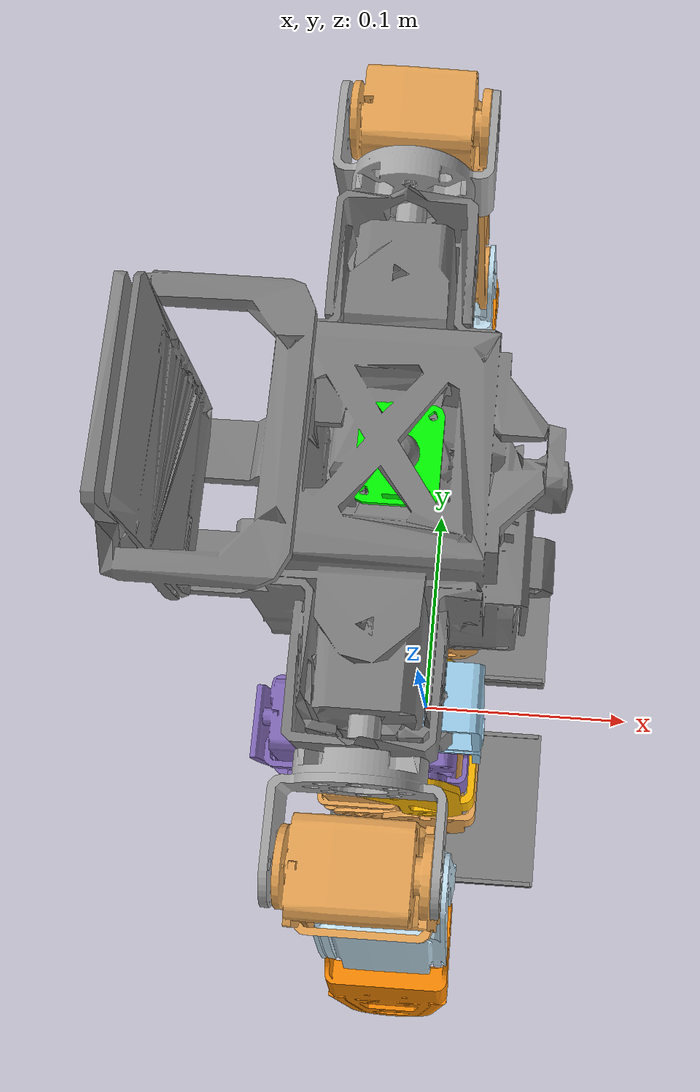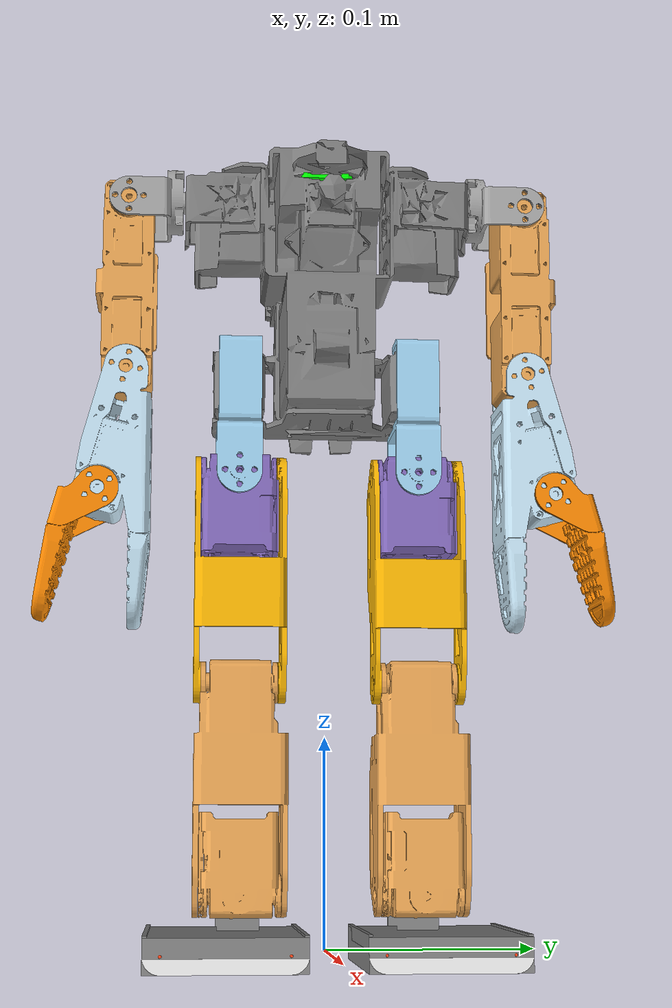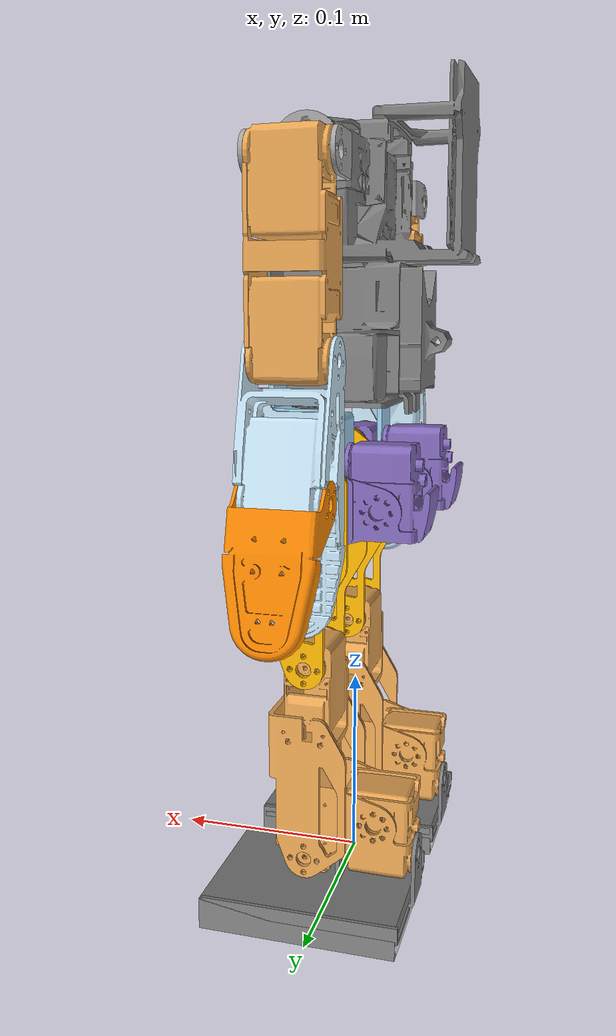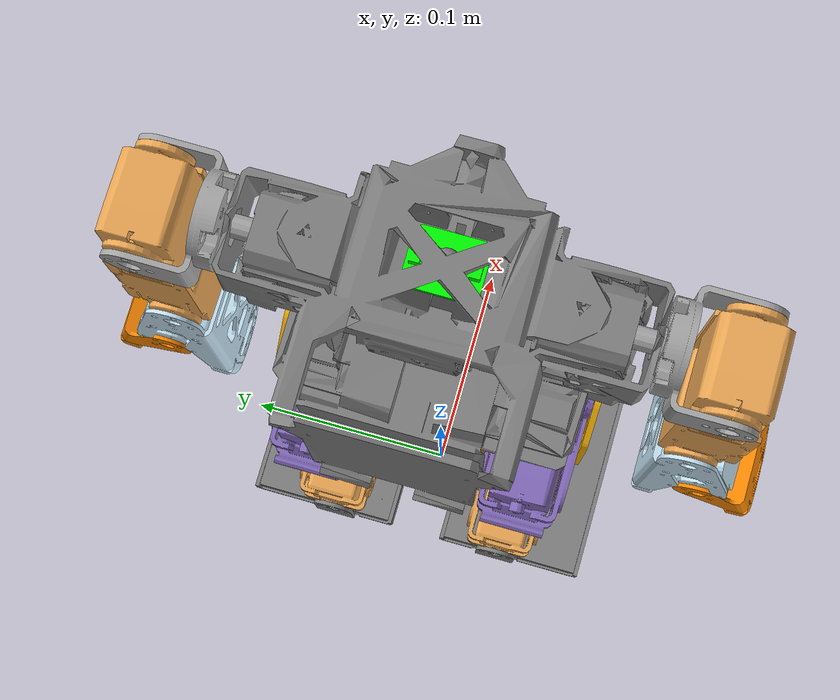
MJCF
<mujoco model="[urdf]_v3.2.1_w_battery">
  <default>
    <default class="robot">
      <default class="feetech_sts3215_12v">
        <joint armature="0.039999999991812" frictionloss="0.16197241014297026" damping="1.2305092028680242" actuatorfrcrange="-5.466091040935576 5.466091040935576" />
        <motor ctrlrange="-5.466091040935576 5.466091040935576" />
      </default>
      <default class="feetech_sts3250">
        <joint armature="0.03999977737144798" frictionloss="0.19999504581400715" damping="1.3464038511725651" actuatorfrcrange="-8.716130441407099 8.716130441407099" />
        <motor ctrlrange="-8.716130441407099 8.716130441407099" />
      </default>
      <default class="visual">
        <geom material="visualgeom" contype="0" conaffinity="0" group="2" />
      </default>
      <default class="collision">
        <geom material="collision_material" condim="3" contype="0" conaffinity="1" priority="1" group="1" solref="0.005 1" friction="0.55" />
        <equality solimp="0.99 0.999 1e-05" solref="0.005 1" />
      </default>
    </default>
    <mesh maxhullvert="64" />
  </default>

  <compiler angle="radian" />

  <asset>
    <material name="base_material" rgba="1 0 0 1" />
    <material name="Hip_Upper_Bracket_material" rgba="0.498039 0.498039 0.498039 1" />
    <material name="Upper_Servo_Hip_Bracket_material" rgba="0.615686 0.811765 0.929412 1" />
    <material name="imu_material" rgba="0 1 0 1" />
    <material name="1910_0025_0816_REV1_1_material" rgba="0.647059 0.647059 0.647059 1" />
    <material name="Right_Hip_Roll_STS3250_material" rgba="0.513725 0.415686 0.733333 1" />
    <material name="Left_Shoulder_Roll_STS3250_material" rgba="0.913725 0.647059 0.329412 1" />
    <material name="Upper_Leg_material" rgba="0.980392 0.713725 0.003922 1" />
    <material name="Gripper_Static_1_material" rgba="0.768627 0.886275 0.952941 1" />
    <material name="Gripper_Dynamic_1_material" rgba="0.972549 0.529412 0.003922 1" />
    <material name="Right_Foot_material" rgba="0.917647 0.917647 0.917647 1" />
    <material name="default_material" rgba="0.7 0.7 0.7 1" />
    <material name="collision_material" rgba="1.0 0.28 0.1 0.9" />
    <mesh name="Hip_Upper_Bracket.stl" file="meshes/Hip_Upper_Bracket.stl" />
    <mesh name="Upper_Servo_Hip_Bracket.stl" file="meshes/Upper_Servo_Hip_Bracket.stl" />
    <mesh name="Right_Hip_Roll_STS3250.stl" file="meshes/Right_Hip_Roll_STS3250.stl" />
    <mesh name="Upper_Leg.stl" file="meshes/Upper_Leg.stl" />
    <mesh name="Right_Knee_Pitch_STS3250.stl" file="meshes/Right_Knee_Pitch_STS3250.stl" />
    <mesh name="Right_Ankle_Pitch_STS3250.stl" file="meshes/Right_Ankle_Pitch_STS3250.stl" />
    <mesh name="Right_Foot_Bracket.stl" file="meshes/Right_Foot_Bracket.stl" />
    <mesh name="Right_Foot.collision.stl" file="meshes/Right_Foot.collision.stl" />
    <mesh name="Right_Foot.stl" file="meshes/Right_Foot.stl" />
    <mesh name="Upper_Servo_Hip_Bracket_1.stl" file="meshes/Upper_Servo_Hip_Bracket_1.stl" />
    <mesh name="Left_Hip_Roll_STS3250.stl" file="meshes/Left_Hip_Roll_STS3250.stl" />
    <mesh name="Upper_Leg_1.stl" file="meshes/Upper_Leg_1.stl" />
    <mesh name="Left_Knee_Pitch_STS3250.stl" file="meshes/Left_Knee_Pitch_STS3250.stl" />
    <mesh name="Left_Ankle_Pitch_STS3250.stl" file="meshes/Left_Ankle_Pitch_STS3250.stl" />
    <mesh name="Left_Foot_Bracket.stl" file="meshes/Left_Foot_Bracket.stl" />
    <mesh name="Left_Foot.collision.stl" file="meshes/Left_Foot.collision.stl" />
    <mesh name="Left_Foot.stl" file="meshes/Left_Foot.stl" />
    <mesh name="imu.stl" file="meshes/imu.stl" />
    <mesh name="1910_0025_0816_REV1_1.stl" file="meshes/1910_0025_0816_REV1_1.stl" />
    <mesh name="Left_Shoulder_Roll_STS3250.stl" file="meshes/Left_Shoulder_Roll_STS3250.stl" />
    <mesh name="Gripper_Static_1.stl" file="meshes/Gripper_Static_1.stl" />
    <mesh name="Gripper_Dynamic_1.stl" file="meshes/Gripper_Dynamic_1.stl" />
    <mesh name="1910_0025_0816_REV1.stl" file="meshes/1910_0025_0816_REV1.stl" />
    <mesh name="Right_Shoulder_Roll_STS3250.stl" file="meshes/Right_Shoulder_Roll_STS3250.stl" />
    <mesh name="Gripper_Static.stl" file="meshes/Gripper_Static.stl" />
    <mesh name="Gripper_Dynamic.stl" file="meshes/Gripper_Dynamic.stl" />
  </asset>

  <worldbody>
    <body name="base" pos="0.00000000 0.00000000 0.26905699" quat="1 0 0 0" childclass="robot">
      <freejoint name="floating_base" />
      <geom name="base_visual" pos="0 0 0" quat="0.7071054825112363 0.0 0.0 0.7071080798594735" material="base_material" type="sphere" size="0.01" class="visual" />
      <body name="Hip_Upper_Bracket" pos="0 0 0" quat="0.7071054825112363 0.0 0.0 0.7071080798594735">
        <inertial pos="0.000064 0.001815 0.046968" quat="1.0 0.0 0.0 0.0" mass="0.947439" diaginertia="0.002272 0.002828 0.001521" />
        <geom name="Hip_Upper_Bracket_visual" pos="0 0 0" quat="1.0 0.0 0.0 0.0" material="Hip_Upper_Bracket_material" type="mesh" mesh="Hip_Upper_Bracket.stl" class="visual" />
        <body name="Upper_Servo_Hip_Bracket" pos="-0.043014 -0.012315 -0.016762" quat="1.0 0.0 0.0 0.0">
          <joint name="right_hip_yaw" type="hinge" ref="0.0" class="feetech_sts3250" range="-1.570796 1.570796" axis="0 0 1" />
          <inertial pos="-0.000048 -0.005548 0.001454" quat="1.0 0.0 0.0 0.0" mass="0.024375" diaginertia="1.6e-05 1.3e-05 6e-06" />
          <geom name="Upper_Servo_Hip_Bracket_visual" pos="0 0 0" quat="1.0 0.0 0.0 0.0" material="Upper_Servo_Hip_Bracket_material" type="mesh" mesh="Upper_Servo_Hip_Bracket.stl" class="visual" />
          <body name="Right_Hip_Roll_STS3250" pos="-0.000087 0.018650 -0.026665" quat="0.7071068967259818 0.7071066656470943 0.0 0.0">
            <joint name="right_hip_roll" type="hinge" ref="0.0" class="feetech_sts3250" range="-0.610865 0.610865" axis="0 0 1" />
            <inertial pos="-0.000391 -0.013509 -0.000227" quat="1.0 0.0 0.0 0.0" mass="0.187737" diaginertia="0.000116 0.000101 6.5e-05" />
            <geom name="Right_Hip_Roll_STS3250_visual" pos="0 0 0" quat="1.0 0.0 0.0 0.0" material="Right_Hip_Roll_STS3250_material" type="mesh" mesh="Right_Hip_Roll_STS3250.stl" class="visual" />
            <body name="Upper_Leg" pos="-0.018200 0 0.016450" quat="0.7071068967259818 0.0 0.7071066656470943 0.0">
              <joint name="right_hip_pitch" type="hinge" ref="0.0" class="feetech_sts3250" range="-2.234021 0.872665" axis="0 0 1" />
              <inertial pos="-0.003366 -0.049105 0.019668" quat="1.0 0.0 0.0 0.0" mass="0.048593" diaginertia="6.1e-05 2.8e-05 4.9e-05" />
              <geom name="Upper_Leg_visual" pos="0 0 0" quat="1.0 0.0 0.0 0.0" material="Upper_Leg_material" type="mesh" mesh="Upper_Leg.stl" class="visual" />
              <body name="Right_Knee_Pitch_STS3250" pos="0 -0.100000 0.001000" quat="-1.7320510330969933e-07 -0.999999999999985 -0.0 0.0">
                <joint name="right_knee_pitch" type="hinge" ref="0.0" class="feetech_sts3250" range="-2.268928 1.745329" axis="0 0 1" />
                <inertial pos="-0.001016 0.028277 -0.017664" quat="1.0 0.0 0.0 0.0" mass="0.132026" diaginertia="0.000126 4.1e-05 0.00011" />
                <geom name="Right_Knee_Pitch_STS3250_visual" pos="0 0 0" quat="1.0 0.0 0.0 0.0" material="Left_Shoulder_Roll_STS3250_material" type="mesh" mesh="Right_Knee_Pitch_STS3250.stl" class="visual" />
                <body name="Right_Ankle_Pitch_STS3250" pos="0 0.100000 -0.038724" quat="-1.7320510330969933e-07 -0.999999999999985 -0.0 0.0">
                  <joint name="right_ankle_pitch" type="hinge" ref="0.0" class="feetech_sts3250" range="-1.570796 0.610865" axis="0 0 1" />
                  <inertial pos="0.016567 0.013062 -0.018658" quat="1.0 0.0 0.0 0.0" mass="0.186777" diaginertia="6.6e-05 0.000101 0.000115" />
                  <geom name="Right_Ankle_Pitch_STS3250_visual" pos="0 0 0" quat="1.0 0.0 0.0 0.0" material="Left_Shoulder_Roll_STS3250_material" type="mesh" mesh="Right_Ankle_Pitch_STS3250.stl" class="visual" />
                  <body name="Right_Foot_Bracket" pos="0.053050 0 -0.019600" quat="-1.2247452309842457e-07 -0.7071068967259713 1.22474483074382e-07 -0.7071066656470838">
                    <joint name="right_ankle_roll" type="hinge" ref="0.0" class="feetech_sts3250" range="-0.523599 0.523599" axis="0 0 1" />
                    <inertial pos="-0.006961 0.021778 -0.045037" quat="1.0 0.0 0.0 0.0" mass="0.047410" diaginertia="4.7e-05 7.3e-05 3e-05" />
                    <geom name="Right_Foot_Bracket_visual" pos="0 0 0" quat="1.0 0.0 0.0 0.0" material="Hip_Upper_Bracket_material" type="mesh" mesh="Right_Foot_Bracket.stl" class="visual" />
                    <body name="Right_Foot" pos="0.018000 0.025630 -0.010575" quat="0.5000001633974483 0.4999999999999733 0.4999999999999733 -0.49999983660255165">
                      <inertial pos="0.040732 -0.025000 -0.003390" quat="1.0 0.0 0.0 0.0" mass="0.065576" diaginertia="2.7e-05 5.5e-05 8.1e-05" />
                      <geom name="Right_Foot_visual" pos="0 0 0" quat="1.0 0.0 0.0 0.0" material="Right_Foot_material" type="mesh" mesh="Right_Foot.stl" class="visual" />
                      <geom name="Right_Foot_collision_capsule_0" type="capsule" quat="1.000000 0.000000 0.000000 0.000000" fromto="-0.001425 -0.053937 0.001000 0.082870 -0.053937 0.001000" size="0.008000 0.050148" material="collision_material" class="collision" />
                      <geom name="Right_Foot_visual_capsule_0" type="capsule" quat="1.000000 0.000000 0.000000 0.000000" fromto="-0.001425 -0.053937 0.001000 0.082870 -0.053937 0.001000" size="0.008000 0.050148" material="Right_Foot_material" class="visual" />
                      <geom name="Right_Foot_collision_capsule_1" type="capsule" quat="1.000000 0.000000 0.000000 0.000000" fromto="-0.001425 0.003937 0.001000 0.082870 0.003937 0.001000" size="0.008000 0.050148" material="collision_material" class="collision" />
                      <geom name="Right_Foot_visual_capsule_1" type="capsule" quat="1.000000 0.000000 0.000000 0.000000" fromto="-0.001425 0.003937 0.001000 0.082870 0.003937 0.001000" size="0.008000 0.050148" material="Right_Foot_material" class="visual" />
                      <site name="right_foot" size="0.05 0.037 0.008" pos="0.040732 -0.025 0.001" type="box" />
                    </body>
                  </body>
                </body>
              </body>
            </body>
          </body>
        </body>
        <body name="Upper_Servo_Hip_Bracket_1" pos="0.043070 -0.012315 -0.016762" quat="1.0 0.0 0.0 0.0">
          <joint name="left_hip_yaw" type="hinge" ref="0.0" class="feetech_sts3250" range="-1.570796 1.570796" axis="0 0 1" />
          <inertial pos="-0.000048 -0.005548 0.001454" quat="1.0 0.0 0.0 0.0" mass="0.024375" diaginertia="1.6e-05 1.3e-05 6e-06" />
          <geom name="Upper_Servo_Hip_Bracket_1_visual" pos="0 0 0" quat="1.0 0.0 0.0 0.0" material="Upper_Servo_Hip_Bracket_material" type="mesh" mesh="Upper_Servo_Hip_Bracket_1.stl" class="visual" />
          <body name="Left_Hip_Roll_STS3250" pos="-0.000087 0.018650 -0.026665" quat="0.7071068967259818 0.7071066656470943 0.0 0.0">
            <joint name="left_hip_roll" type="hinge" ref="0.0" class="feetech_sts3250" range="-0.610865 0.610865" axis="0 0 1" />
            <inertial pos="-0.000376 -0.013509 -0.000227" quat="1.0 0.0 0.0 0.0" mass="0.187737" diaginertia="0.000116 0.000101 6.5e-05" />
            <geom name="Left_Hip_Roll_STS3250_visual" pos="0 0 0" quat="1.0 0.0 0.0 0.0" material="Right_Hip_Roll_STS3250_material" type="mesh" mesh="Left_Hip_Roll_STS3250.stl" class="visual" />
            <body name="Upper_Leg_1" pos="-0.018200 0 0.016450" quat="0.7071068967259818 0.0 0.7071066656470943 0.0">
              <joint name="left_hip_pitch" type="hinge" ref="0.0" class="feetech_sts3250" range="-2.234021 0.872665" axis="0 0 1" />
              <inertial pos="-0.003366 -0.049105 0.019668" quat="1.0 0.0 0.0 0.0" mass="0.048593" diaginertia="6.1e-05 2.8e-05 4.9e-05" />
              <geom name="Upper_Leg_1_visual" pos="0 0 0" quat="1.0 0.0 0.0 0.0" material="Upper_Leg_material" type="mesh" mesh="Upper_Leg_1.stl" class="visual" />
              <body name="Left_Knee_Pitch_STS3250" pos="0 -0.100000 0.001000" quat="-1.7320510330969933e-07 -0.999999999999985 -0.0 0.0">
                <joint name="left_knee_pitch" type="hinge" ref="0.0" class="feetech_sts3250" range="-2.268928 1.745329" axis="0 0 1" />
                <inertial pos="-0.001016 0.028277 -0.017664" quat="1.0 0.0 0.0 0.0" mass="0.132026" diaginertia="0.000126 4.1e-05 0.00011" />
                <geom name="Left_Knee_Pitch_STS3250_visual" pos="0 0 0" quat="1.0 0.0 0.0 0.0" material="Left_Shoulder_Roll_STS3250_material" type="mesh" mesh="Left_Knee_Pitch_STS3250.stl" class="visual" />
                <body name="Left_Ankle_Pitch_STS3250" pos="0 0.100000 -0.038724" quat="-1.7320510330969933e-07 -0.999999999999985 -0.0 0.0">
                  <joint name="left_ankle_pitch" type="hinge" ref="0.0" class="feetech_sts3250" range="-1.570796 0.610865" axis="0 0 1" />
                  <inertial pos="0.016567 0.013062 -0.018493" quat="1.0 0.0 0.0 0.0" mass="0.186777" diaginertia="6.5e-05 0.0001 0.000115" />
                  <geom name="Left_Ankle_Pitch_STS3250_visual" pos="0 0 0" quat="1.0 0.0 0.0 0.0" material="Left_Shoulder_Roll_STS3250_material" type="mesh" mesh="Left_Ankle_Pitch_STS3250.stl" class="visual" />
                  <body name="Left_Foot_Bracket" pos="0.053050 0 -0.019400" quat="-1.2247452309842457e-07 -0.7071068967259713 1.22474483074382e-07 -0.7071066656470838">
                    <joint name="left_ankle_roll" type="hinge" ref="0.0" class="feetech_sts3250" range="-0.523599 0.523599" axis="0 0 1" />
                    <inertial pos="0.006961 0.021778 -0.045037" quat="1.0 0.0 0.0 0.0" mass="0.047410" diaginertia="4.7e-05 7.3e-05 3e-05" />
                    <geom name="Left_Foot_Bracket_visual" pos="0 0 0" quat="1.0 0.0 0.0 0.0" material="Hip_Upper_Bracket_material" type="mesh" mesh="Left_Foot_Bracket.stl" class="visual" />
                    <body name="Left_Foot" pos="0.032000 0.025630 -0.010575" quat="0.5000001633974483 0.4999999999999733 0.4999999999999733 -0.49999983660255165">
                      <inertial pos="0.040732 -0.025000 -0.003390" quat="1.0 0.0 0.0 0.0" mass="0.065576" diaginertia="2.7e-05 5.5e-05 8.1e-05" />
                      <geom name="Left_Foot_visual" pos="0 0 0" quat="1.0 0.0 0.0 0.0" material="Right_Foot_material" type="mesh" mesh="Left_Foot.stl" class="visual" />
                      <geom name="Left_Foot_collision_capsule_0" type="capsule" quat="1.000000 0.000000 0.000000 0.000000" fromto="-0.001425 -0.053937 0.001000 0.082870 -0.053937 0.001000" size="0.008000 0.050148" material="collision_material" class="collision" />
                      <geom name="Left_Foot_visual_capsule_0" type="capsule" quat="1.000000 0.000000 0.000000 0.000000" fromto="-0.001425 -0.053937 0.001000 0.082870 -0.053937 0.001000" size="0.008000 0.050148" material="Right_Foot_material" class="visual" />
                      <geom name="Left_Foot_collision_capsule_1" type="capsule" quat="1.000000 0.000000 0.000000 0.000000" fromto="-0.001425 0.003937 0.001000 0.082870 0.003937 0.001000" size="0.008000 0.050148" material="collision_material" class="collision" />
                      <geom name="Left_Foot_visual_capsule_1" type="capsule" quat="1.000000 0.000000 0.000000 0.000000" fromto="-0.001425 0.003937 0.001000 0.082870 0.003937 0.001000" size="0.008000 0.050148" material="Right_Foot_material" class="visual" />
                      <site name="left_foot" size="0.05 0.037 0.008" pos="0.040732 -0.025 0.001" type="box" />
                    </body>
                  </body>
                </body>
              </body>
            </body>
          </body>
        </body>
        <body name="imu" pos="0.000028 -0.007747 0.110737" quat="-1.732050904062657e-07 -6.685716821730214e-11 -0.00038599999041458497 -0.9999999255019859">
          <inertial pos="0 0 -0.000465" quat="1.0 0.0 0.0 0.0" mass="0.002752" diaginertia="1e-06 1e-06 1e-06" />
          <geom name="imu_visual" pos="0 0 0" quat="1.0 0.0 0.0 0.0" material="imu_material" type="mesh" mesh="imu.stl" class="visual" />
          <site name="imu_site" quat="1.0 0.0 0.0 0.0" pos="0.0 0.0 0.0" />
        </body>
        <body name="1910_0025_0816_REV1_1" pos="0.065728 -0.004315 0.098638" quat="0.5000001633974483 -0.4999999999999733 -0.49999983660255165 0.4999999999999733">
          <joint name="left_shoulder_pitch" type="hinge" ref="0.0" class="feetech_sts3250" range="-1.570796 3.141593" axis="0 0 1" />
          <inertial pos="0.000032 0.001430 -0.013973" quat="1.0 0.0 0.0 0.0" mass="0.018130" diaginertia="3e-06 5e-06 4e-06" />
          <geom name="1910_0025_0816_REV1_1_visual" pos="0 0 0" quat="1.0 0.0 0.0 0.0" material="1910_0025_0816_REV1_1_material" type="mesh" mesh="1910_0025_0816_REV1_1.stl" class="visual" />
          <body name="Left_Shoulder_Roll_STS3250" pos="-0.018758 0.004100 -0.032700" quat="-1.2247452309842457e-07 0.7071068967259713 -1.22474483074382e-07 -0.7071066656470838">
            <joint name="left_shoulder_roll" type="hinge" ref="0.0" class="feetech_sts3250" range="-0.349066 3.316126" axis="0 0 1" />
            <inertial pos="0.000214 -0.038685 -0.017251" quat="1.0 0.0 0.0 0.0" mass="0.151717" diaginertia="0.000188 3.4e-05 0.000175" />
            <geom name="Left_Shoulder_Roll_STS3250_visual" pos="0 0 0" quat="1.0 0.0 0.0 0.0" material="Left_Shoulder_Roll_STS3250_material" type="mesh" mesh="Left_Shoulder_Roll_STS3250.stl" class="visual" />
            <body name="Gripper_Static_1" pos="0 -0.086212 0" quat="-1.7320510330969933e-07 -0.999999999999985 -0.0 0.0">
              <joint name="left_elbow_roll" type="hinge" ref="0.0" class="feetech_sts3215_12v" range="-1.396263 1.570796" axis="0 0 1" />
              <inertial pos="0.003807 0.052618 0.017678" quat="1.0 0.0 0.0 0.0" mass="0.106517" diaginertia="9.2e-05 3e-05 8.6e-05" />
              <geom name="Gripper_Static_1_visual" pos="0 0 0" quat="1.0 0.0 0.0 0.0" material="Gripper_Static_1_material" type="mesh" mesh="Gripper_Static_1.stl" class="visual" />
              <body name="Gripper_Dynamic_1" pos="0.012500 0.060000 -0.000260" quat="1.0 0.0 0.0 0.0">
                <joint name="left_gripper_roll" type="hinge" ref="0.0" class="feetech_sts3215_12v" range="-0.488692 0.663225" axis="0 0 1" />
                <inertial pos="0.018952 0.024682 0.018814" quat="1.0 0.0 0.0 0.0" mass="0.025433" diaginertia="1.1e-05 5e-06 9e-06" />
                <geom name="Gripper_Dynamic_1_visual" pos="0 0 0" quat="1.0 0.0 0.0 0.0" material="Gripper_Dynamic_1_material" type="mesh" mesh="Gripper_Dynamic_1.stl" class="visual" />
              </body>
            </body>
          </body>
        </body>
        <body name="1910_0025_0816_REV1" pos="-0.065672 -0.004315 0.098638" quat="0.5000001633974483 0.4999999999999733 0.49999983660255165 0.4999999999999733">
          <joint name="right_shoulder_pitch" type="hinge" ref="0.0" class="feetech_sts3250" range="-3.141593 1.570796" axis="0 0 1" />
          <inertial pos="-0.000032 -0.001430 -0.013973" quat="1.0 0.0 0.0 0.0" mass="0.018130" diaginertia="3e-06 5e-06 4e-06" />
          <geom name="1910_0025_0816_REV1_visual" pos="0 0 0" quat="1.0 0.0 0.0 0.0" material="1910_0025_0816_REV1_1_material" type="mesh" mesh="1910_0025_0816_REV1.stl" class="visual" />
          <body name="Right_Shoulder_Roll_STS3250" pos="-0.018892 -0.004100 -0.032700" quat="-1.2247452309842457e-07 0.7071068967259713 1.22474483074382e-07 0.7071066656470838">
            <joint name="right_shoulder_roll" type="hinge" ref="0.0" class="feetech_sts3250" range="-3.316126 0.349066" axis="0 0 -1" />
            <inertial pos="-0.000210 0.038685 0.017251" quat="1.0 0.0 0.0 0.0" mass="0.151717" diaginertia="0.000188 3.4e-05 0.000175" />
            <geom name="Right_Shoulder_Roll_STS3250_visual" pos="0 0 0" quat="1.0 0.0 0.0 0.0" material="Left_Shoulder_Roll_STS3250_material" type="mesh" mesh="Right_Shoulder_Roll_STS3250.stl" class="visual" />
            <body name="Gripper_Static" pos="0 0.086212 0" quat="1.0 0.0 0.0 0.0">
              <joint name="right_elbow_roll" type="hinge" ref="0.0" class="feetech_sts3215_12v" range="-1.570796 1.396263" axis="0 0 1" />
              <inertial pos="-0.003821 0.052614 0.017678" quat="1.0 0.0 0.0 0.0" mass="0.106517" diaginertia="9.2e-05 3.1e-05 8.6e-05" />
              <geom name="Gripper_Static_visual" pos="0 0 0" quat="1.0 0.0 0.0 0.0" material="Gripper_Static_1_material" type="mesh" mesh="Gripper_Static.stl" class="visual" />
              <body name="Gripper_Dynamic" pos="-0.012500 0.060000 -0.000260" quat="-1.7320510330969933e-07 -0.999999999999985 -0.0 0.0">
                <joint name="right_gripper_roll" type="hinge" ref="0.0" class="feetech_sts3215_12v" range="-0.663225 0.488692" axis="0 0 -1" />
                <inertial pos="-0.018952 -0.024682 -0.018814" quat="1.0 0.0 0.0 0.0" mass="0.025433" diaginertia="1.1e-05 5e-06 9e-06" />
                <geom name="Gripper_Dynamic_visual" pos="0 0 0" quat="1.0 0.0 0.0 0.0" material="Gripper_Dynamic_1_material" type="mesh" mesh="Gripper_Dynamic.stl" class="visual" />
              </body>
            </body>
          </body>
        </body>
      </body>
      <site name="base_site" pos="0 0 0" quat="1 0 0 0" />
      <camera name="front_camera" mode="track" fovy="90.0" quat="4.329780281177467e-17 4.329780281177466e-17 0.7071067811865475 0.7071067811865476" pos="0.0 2.0 0.5" />
      <camera name="side_camera" mode="track" fovy="90.0" quat="-0.5 -0.4999999999999999 0.5 0.5000000000000001" pos="-2.0 0.0 0.5" />
    </body>
  </worldbody>

  <actuator>
    <motor name="right_hip_yaw_ctrl" joint="right_hip_yaw" class="feetech_sts3250" />
    <motor name="right_hip_roll_ctrl" joint="right_hip_roll" class="feetech_sts3250" />
    <motor name="right_hip_pitch_ctrl" joint="right_hip_pitch" class="feetech_sts3250" />
    <motor name="right_knee_pitch_ctrl" joint="right_knee_pitch" class="feetech_sts3250" />
    <motor name="right_ankle_pitch_ctrl" joint="right_ankle_pitch" class="feetech_sts3250" />
    <motor name="right_ankle_roll_ctrl" joint="right_ankle_roll" class="feetech_sts3250" />
    <motor name="left_hip_yaw_ctrl" joint="left_hip_yaw" class="feetech_sts3250" />
    <motor name="left_hip_roll_ctrl" joint="left_hip_roll" class="feetech_sts3250" />
    <motor name="left_hip_pitch_ctrl" joint="left_hip_pitch" class="feetech_sts3250" />
    <motor name="left_knee_pitch_ctrl" joint="left_knee_pitch" class="feetech_sts3250" />
    <motor name="left_ankle_pitch_ctrl" joint="left_ankle_pitch" class="feetech_sts3250" />
    <motor name="left_ankle_roll_ctrl" joint="left_ankle_roll" class="feetech_sts3250" />
    <motor name="left_shoulder_pitch_ctrl" joint="left_shoulder_pitch" class="feetech_sts3250" />
    <motor name="left_shoulder_roll_ctrl" joint="left_shoulder_roll" class="feetech_sts3250" />
    <motor name="left_elbow_roll_ctrl" joint="left_elbow_roll" class="feetech_sts3215_12v" />
    <motor name="left_gripper_roll_ctrl" joint="left_gripper_roll" class="feetech_sts3215_12v" />
    <motor name="right_shoulder_pitch_ctrl" joint="right_shoulder_pitch" class="feetech_sts3250" />
    <motor name="right_shoulder_roll_ctrl" joint="right_shoulder_roll" class="feetech_sts3250" />
    <motor name="right_elbow_roll_ctrl" joint="right_elbow_roll" class="feetech_sts3215_12v" />
    <motor name="right_gripper_roll_ctrl" joint="right_gripper_roll" class="feetech_sts3215_12v" />
  </actuator>

  <contact />

  <sensor>
    <framepos name="base_site_pos" objtype="site" objname="base_site" />
    <framequat name="base_site_quat" objtype="site" objname="base_site" />
    <framelinvel name="base_site_linvel" objtype="site" objname="base_site" />
    <frameangvel name="base_site_angvel" objtype="site" objname="base_site" />
    <velocimeter name="base_site_vel" site="base_site" />
    <accelerometer name="imu_acc" site="imu_site" noise="0.01" />
    <gyro name="imu_gyro" site="imu_site" noise="0.01" />
    <magnetometer name="imu_mag" site="imu_site" noise="0.05" />
    <framepos name="imu_site_pos" objtype="site" objname="imu_site" />
    <framequat name="imu_site_quat" objtype="site" objname="imu_site" />
    <framelinvel name="imu_site_linvel" objtype="site" objname="imu_site" />
    <frameangvel name="imu_site_angvel" objtype="site" objname="imu_site" />
    <velocimeter name="imu_site_vel" site="imu_site" />
    <force name="left_foot_force" site="left_foot" />
    <force name="right_foot_force" site="right_foot" />
    <touch name="left_foot_touch" site="left_foot" />
    <touch name="right_foot_touch" site="right_foot" />
  </sensor>
</mujoco>
